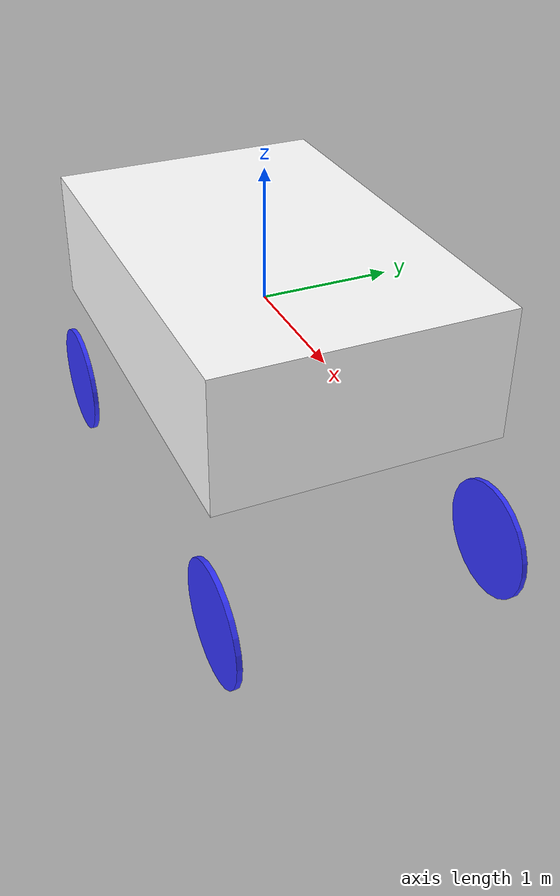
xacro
<?xml version="1.0"?>
<robot name="vehicle" xmlns:xacro="http://ros.org/wiki/xacro">
    <xacro:include filename="inertial_macros.xacro"/>

    <material name="white">
        <color rgba="1 1 1 1" />
    </material>

    <material name="orange">
        <color rgba="1 0.3 0.1 1"/>
    </material>

    <material name="blue">
        <color rgba="0.2 0.2 1 1"/>
    </material>

    <material name="black">
        <color rgba="0 0 0 1"/>
    </material>

    <!-- Geometry -->
    <xacro:property name="base_length" value="3.24644"/>
    <xacro:property name="base_width" value="2.12321"/>
    <xacro:property name="base_height" value="1"/>
    <xacro:property name="base_mass" value="5"/>

    <xacro:property name="wheel_radius" value="0.45"/>
    <xacro:property name="wheel_width" value="0.04"/>
    <xacro:property name="wheel_mass" value="1"/>
    <xacro:property name="front_wheel_track" value="2.12321"/>
    <xacro:property name="rear_wheel_track" value="1.76868"/>
    <xacro:property name="wheel_zoff" value="0.5"/>

    <!-- Chassis-->
    <link name="base_link">
    </link>

    <joint name="chassis_joint" type="fixed">
        <parent link="base_link"/>
        <child link="chassis"/>
        <origin xyz="0 0 0"/>
    </joint>

    <link name="chassis">
        <visual>
            <geometry>
                <box size="${base_length} ${base_width} ${base_height}"/>
            </geometry>
            <material name="white"/>
        </visual>
        <collision>
            <geometry>
                <box size="${base_length} ${base_width} ${base_height}"/>
            </geometry>
        </collision>
        <xacro:inertial_box mass="${base_mass}" x="${base_length}" y="${base_width}" z="${base_height}">
            <origin xyz="0 0 0" rpy="0 0 0"/>
        </xacro:inertial_box>
    </link>

    <xacro:macro name="steering_wheel" params="wheel_name joint_name mass radius length x y">
        <link name="${wheel_name}">
            <xacro:inertial_cylinder mass="${mass}" length="${length}" radius="${radius}">
                <origin xyz="0 0 0" rpy="0 0 0"/>
            </xacro:inertial_cylinder>
            <visual>
                <geometry>
                    <cylinder length="${length}" radius="${radius}"/>
                </geometry>
                <material name="blue"/>
            </visual>
           <collision>
                <geometry>
                    <cylinder length="${length}" radius="${radius}"/>
                </geometry>
            </collision>
        </link>

        <joint name="${joint_name}" type="continuous">
            <origin xyz="${x} ${y} -${base_height/2 + 2*radius}" rpy="${pi/2} 0.0 0.0"/>
            <parent link="chassis"/>
            <child link="${wheel_name}"/>
            <axis xyz="0.0 1.0 0"/>
        </joint>
    </xacro:macro>

    <xacro:macro name="driving_wheel" params="wheel_name joint_name mass radius length x y">
        <link name="${wheel_name}">
            <xacro:inertial_cylinder mass="${mass}" length="${length}" radius="${radius}">
                <origin xyz="0 0 0" rpy="0 0 0"/>
            </xacro:inertial_cylinder>
            <visual>
                <geometry>
                    <cylinder length="${length}" radius="${radius}"/>
                </geometry>
                <material name="blue"/>
            </visual>
           <collision>
                <geometry>
                    <cylinder length="${length}" radius="${radius}"/>
                </geometry>
            </collision>
        </link>

        <joint name="${joint_name}" type="continuous">
            <origin xyz="${x} ${y} -${base_height/2 + 2*radius}" rpy="${pi/2} 0.0 0.0"/>
            <parent link="chassis"/>
            <child link="${wheel_name}"/>
            <axis xyz="0.0 0 -1"/>
        </joint>
    </xacro:macro>

    <xacro:steering_wheel wheel_name="front_left_wheel" joint_name="front_left_steering_joint" mass="${wheel_mass}" radius="${wheel_radius}" length="${wheel_width}" x="${base_length/2}" y="${front_wheel_track/2}"/>
    <xacro:steering_wheel wheel_name="front_right_wheel" joint_name="front_right_steering_joint" mass="${wheel_mass}" radius="${wheel_radius}" length="${wheel_width}" x="${base_length/2}" y="${-front_wheel_track/2}"/>

    <xacro:driving_wheel wheel_name="rear_left_wheel" joint_name="rear_left_wheel_joint" mass="${wheel_mass}" radius="${wheel_radius}" length="${wheel_width}" x="${-base_length/2}" y="${front_wheel_track/2}"/>
    <xacro:driving_wheel wheel_name="rear_right_wheel" joint_name="rear_right_wheel_joint" mass="${wheel_mass}" radius="${wheel_radius}" length="${wheel_width}" x="${-base_length/2}" y="${-front_wheel_track/2}"/>

    <!-- Gazebo-->
    <gazebo>
        <plugin filename="libgazebo_ros2_control.so" name="gazebo_ros2_control">
            <parameters>$(find ackermann_description)/config/controller_manager.yaml</parameters>
        </plugin>
    </gazebo>

    <ros2_control name="GazeboSystem" type="system">
        <hardware>
            <plugin>gazebo_ros2_control/GazeboSystem</plugin>
        </hardware>
        <joint name="front_left_steering_joint">
            <command_interface name="position">
                <param name="min">-pi</param>
                <param name="max">pi</param>
            </command_interface>
            <state_interface name="position"/>
            <state_interface name="velocity"/>
        </joint>
        <joint name="front_right_steering_joint">
            <command_interface name="position">
                <param name="min">-pi</param>
                <param name="max">pi</param>
            </command_interface>
            <state_interface name="position"/>
            <state_interface name="velocity"/>
        </joint>
        <joint name="rear_left_wheel_joint">
            <command_interface name="velocity">
            </command_interface>
            <state_interface name="position"/>
            <state_interface name="velocity"/>
        </joint>
        <joint name="rear_right_wheel_joint">
            <command_interface name="velocity">
            </command_interface>
            <state_interface name="position"/>
            <state_interface name="velocity"/>
        </joint>
    </ros2_control>
</robot>
